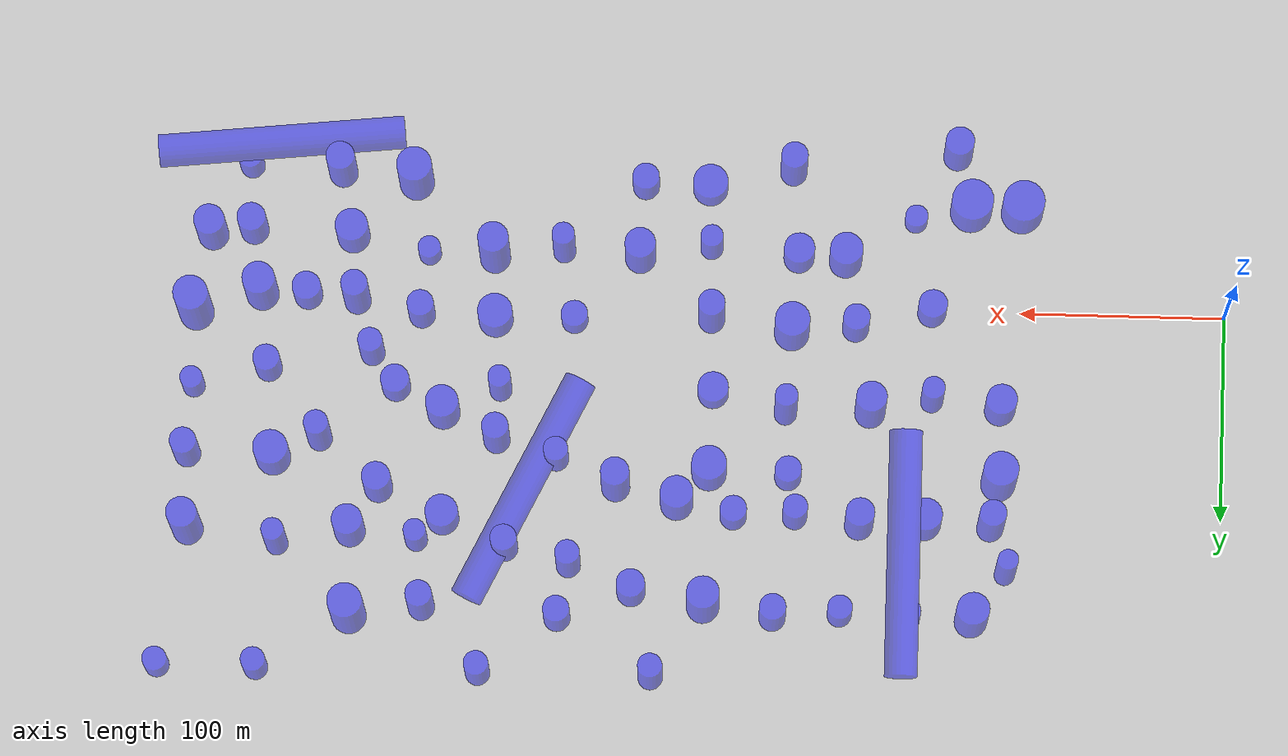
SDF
<sdf version="1.6">
 <world name="default">
  <model name="ground_plane">
   <static>1</static>
   <link name="link">
    <collision name="collision">
     <geometry><plane><normal>0 0 1</normal><size>1400.0 1400.0</size></plane></geometry>
     <surface><friction><ode><mu>100</mu><mu2>50</mu2></ode></friction></surface>
    </collision>
    <visual name="visual">
     <cast_shadows>0</cast_shadows>
     <geometry><plane><normal>0 0 1</normal><size>1400.0 1400.0</size></plane></geometry>
     <material>
      <script><uri>file://media/materials/scripts/gazebo.material</uri><name>Gazebo/Grey</name></script>
     </material>
    </visual>
   </link>
  </model>
  <model name="unit_cylinder_clone">
   <static>true</static>
   <pose>100.023 -50.0251 18.13715 0 0 0</pose>
   <link name="link">
    <inertial>
     <mass>1</mass>
     <inertia><ixx>0.145833</ixx><ixy>0</ixy><ixz>0</ixz><iyy>0.145833</iyy><iyz>0</iyz><izz>0.125</izz></inertia>
    </inertial>
    <collision name="collision">
     <geometry><cylinder><radius>10.1458</radius><length>36.2743</length></cylinder></geometry>
    </collision>
    <visual name="visual">
     <geometry><cylinder><radius>10.1458</radius><length>36.2743</length></cylinder></geometry>
     <material><ambient>0 0 1 1</ambient><diffuse>0 0 1 1</diffuse></material>
     <transparency>0.5</transparency>
    </visual>
   </link>
  </model>
  <model name="unit_cylinder_clone_0">
   <static>true</static>
   <pose>125.023 -50.0251 18.13715 0 0 0</pose>
   <link name="link">
    <inertial>
     <mass>1</mass>
     <inertia><ixx>0.145833</ixx><ixy>0</ixy><ixz>0</ixz><iyy>0.145833</iyy><iyz>0</iyz><izz>0.125</izz></inertia>
    </inertial>
    <collision name="collision">
     <geometry><cylinder><radius>10.1458</radius><length>36.2743</length></cylinder></geometry>
    </collision>
    <visual name="visual">
     <geometry><cylinder><radius>10.1458</radius><length>36.2743</length></cylinder></geometry>
     <material><ambient>0 0 1 1</ambient><diffuse>0 0 1 1</diffuse></material>
     <transparency>0.5</transparency>
    </visual>
   </link>
  </model>
  <model name="static_obs18">
   <static>true</static>
   <pose>143.06 0.77 15.0 0 0 0</pose>
   <link name="link">
    <gravity>false</gravity>
    <collision name="collision">
     <geometry><cylinder><radius>7.0</radius><length>30.0</length></cylinder></geometry>
    </collision>
    <visual name="visual">
     <geometry><cylinder><radius>7.0</radius><length>30.0</length></cylinder></geometry>
     <material><ambient>0 0 1 1</ambient><diffuse>0 0 1 1</diffuse></material>
     <transparency>0.5</transparency>
    </visual>
   </link>
  </model>
  <model name="static_obs19">
   <static>true</static>
   <pose>132.02 -77.37 22.0 0 0 0</pose>
   <link name="link">
    <gravity>false</gravity>
    <collision name="collision">
     <geometry><cylinder><radius>7.0</radius><length>44.0</length></cylinder></geometry>
    </collision>
    <visual name="visual">
     <geometry><cylinder><radius>7.0</radius><length>44.0</length></cylinder></geometry>
     <material><ambient>0 0 1 1</ambient><diffuse>0 0 1 1</diffuse></material>
     <transparency>0.5</transparency>
    </visual>
   </link>
  </model>
  <model name="static_obs20">
   <static>true</static>
   <pose>185.89 -23.61 20.0 0 0 0</pose>
   <link name="link">
    <gravity>false</gravity>
    <collision name="collision">
     <geometry><cylinder><radius>8.0</radius><length>40.0</length></cylinder></geometry>
    </collision>
    <visual name="visual">
     <geometry><cylinder><radius>8.0</radius><length>40.0</length></cylinder></geometry>
     <material><ambient>0 0 1 1</ambient><diffuse>0 0 1 1</diffuse></material>
     <transparency>0.5</transparency>
    </visual>
   </link>
  </model>
  <model name="static_obs21">
   <static>true</static>
   <pose>212.28 -67.25 25.0 0 0 0</pose>
   <link name="link">
    <gravity>false</gravity>
    <collision name="collision">
     <geometry><cylinder><radius>6.5</radius><length>50.0</length></cylinder></geometry>
    </collision>
    <visual name="visual">
     <geometry><cylinder><radius>6.5</radius><length>50.0</length></cylinder></geometry>
     <material><ambient>0 0 1 1</ambient><diffuse>0 0 1 1</diffuse></material>
     <transparency>0.5</transparency>
    </visual>
   </link>
  </model>
  <model name="static_obs49">
   <static>true</static>
   <pose>477.63 -63.67 15.0 0 0 0</pose>
   <link name="link">
    <gravity>false</gravity>
    <collision name="collision">
     <geometry><cylinder><radius>6.0</radius><length>30.0</length></cylinder></geometry>
    </collision>
    <visual name="visual">
     <geometry><cylinder><radius>6.0</radius><length>30.0</length></cylinder></geometry>
     <material><ambient>0 0 1 1</ambient><diffuse>0 0 1 1</diffuse></material>
     <transparency>0.5</transparency>
    </visual>
   </link>
  </model>
  <model name="static_obs50">
   <static>true</static>
   <pose>432.98 -61.18 25.0 0 0 0</pose>
   <link name="link">
    <gravity>false</gravity>
    <collision name="collision">
     <geometry><cylinder><radius>7.0</radius><length>50.0</length></cylinder></geometry>
    </collision>
    <visual name="visual">
     <geometry><cylinder><radius>7.0</radius><length>50.0</length></cylinder></geometry>
     <material><ambient>0 0 1 1</ambient><diffuse>0 0 1 1</diffuse></material>
     <transparency>0.5</transparency>
    </visual>
   </link>
  </model>
  <model name="static_obs51">
   <static>true</static>
   <pose>475.65 -31.66 20.0 0 0 0</pose>
   <link name="link">
    <gravity>false</gravity>
    <collision name="collision">
     <geometry><cylinder><radius>7.0</radius><length>40.0</length></cylinder></geometry>
    </collision>
    <visual name="visual">
     <geometry><cylinder><radius>7.0</radius><length>40.0</length></cylinder></geometry>
     <material><ambient>0 0 1 1</ambient><diffuse>0 0 1 1</diffuse></material>
     <transparency>0.5</transparency>
    </visual>
   </link>
  </model>
  <model name="static_obs52">
   <static>true</static>
   <pose>427.03 -29.68 18.0 0 0 0</pose>
   <link name="link">
    <gravity>false</gravity>
    <collision name="collision">
     <geometry><cylinder><radius>8.0</radius><length>36.0</length></cylinder></geometry>
    </collision>
    <visual name="visual">
     <geometry><cylinder><radius>8.0</radius><length>36.0</length></cylinder></geometry>
     <material><ambient>0 0 1 1</ambient><diffuse>0 0 1 1</diffuse></material>
     <transparency>0.5</transparency>
    </visual>
   </link>
  </model>
  <model name="static_obs53">
   <static>true</static>
   <pose>470.69 -0.03 25.0 0 0 0</pose>
   <link name="link">
    <gravity>false</gravity>
    <collision name="collision">
     <geometry><cylinder><radius>8.0</radius><length>50.0</length></cylinder></geometry>
    </collision>
    <visual name="visual">
     <geometry><cylinder><radius>8.0</radius><length>50.0</length></cylinder></geometry>
     <material><ambient>0 0 1 1</ambient><diffuse>0 0 1 1</diffuse></material>
     <transparency>0.5</transparency>
    </visual>
   </link>
  </model>
  <model name="static_obs54">
   <static>true</static>
   <pose>424.05 2.2 28.0 0 0 0</pose>
   <link name="link">
    <gravity>false</gravity>
    <collision name="collision">
     <geometry><cylinder><radius>6.5</radius><length>56.0</length></cylinder></geometry>
    </collision>
    <visual name="visual">
     <geometry><cylinder><radius>6.5</radius><length>56.0</length></cylinder></geometry>
     <material><ambient>0 0 1 1</ambient><diffuse>0 0 1 1</diffuse></material>
     <transparency>0.5</transparency>
    </visual>
   </link>
  </model>
  <model name="static_obs55">
   <static>true</static>
   <pose>466.36 36.68 18.0 0 0 0</pose>
   <link name="link">
    <gravity>false</gravity>
    <collision name="collision">
     <geometry><cylinder><radius>6.5</radius><length>36.0</length></cylinder></geometry>
    </collision>
    <visual name="visual">
     <geometry><cylinder><radius>6.5</radius><length>36.0</length></cylinder></geometry>
     <material><ambient>0 0 1 1</ambient><diffuse>0 0 1 1</diffuse></material>
     <transparency>0.5</transparency>
    </visual>
   </link>
  </model>
  <model name="static_obs56">
   <static>true</static>
   <pose>415.91 27.95 22.0 0 0 0</pose>
   <link name="link">
    <gravity>false</gravity>
    <collision name="collision">
     <geometry><cylinder><radius>6.0</radius><length>44.0</length></cylinder></geometry>
    </collision>
    <visual name="visual">
     <geometry><cylinder><radius>6.0</radius><length>44.0</length></cylinder></geometry>
     <material><ambient>0 0 1 1</ambient><diffuse>0 0 1 1</diffuse></material>
     <transparency>0.5</transparency>
    </visual>
   </link>
  </model>
  <model name="static_obs57">
   <static>true</static>
   <pose>440.3 70.84 28.0 0 0 0</pose>
   <link name="link">
    <gravity>false</gravity>
    <collision name="collision">
     <geometry><cylinder><radius>6.0</radius><length>56.0</length></cylinder></geometry>
    </collision>
    <visual name="visual">
     <geometry><cylinder><radius>6.0</radius><length>56.0</length></cylinder></geometry>
     <material><ambient>0 0 1 1</ambient><diffuse>0 0 1 1</diffuse></material>
     <transparency>0.5</transparency>
    </visual>
   </link>
  </model>
  <model name="static_obs58">
   <static>true</static>
   <pose>403.84 44.39 15.0 0 0 0</pose>
   <link name="link">
    <gravity>false</gravity>
    <collision name="collision">
     <geometry><cylinder><radius>7.0</radius><length>30.0</length></cylinder></geometry>
    </collision>
    <visual name="visual">
     <geometry><cylinder><radius>7.0</radius><length>30.0</length></cylinder></geometry>
     <material><ambient>0 0 1 1</ambient><diffuse>0 0 1 1</diffuse></material>
     <transparency>0.5</transparency>
    </visual>
   </link>
  </model>
  <model name="static_obs59">
   <static>true</static>
   <pose>410.97 94.51 22.0 0 0 0</pose>
   <link name="link">
    <gravity>false</gravity>
    <collision name="collision">
     <geometry><cylinder><radius>7.0</radius><length>44.0</length></cylinder></geometry>
    </collision>
    <visual name="visual">
     <geometry><cylinder><radius>7.0</radius><length>44.0</length></cylinder></geometry>
     <material><ambient>0 0 1 1</ambient><diffuse>0 0 1 1</diffuse></material>
     <transparency>0.5</transparency>
    </visual>
   </link>
  </model>
  <model name="static_obs60">
   <static>true</static>
   <pose>380.31 56.51 20.0 0 0 0</pose>
   <link name="link">
    <gravity>false</gravity>
    <collision name="collision">
     <geometry><cylinder><radius>8.0</radius><length>40.0</length></cylinder></geometry>
    </collision>
    <visual name="visual">
     <geometry><cylinder><radius>8.0</radius><length>40.0</length></cylinder></geometry>
     <material><ambient>0 0 1 1</ambient><diffuse>0 0 1 1</diffuse></material>
     <transparency>0.5</transparency>
    </visual>
   </link>
  </model>
  <model name="static_obs61">
   <static>true</static>
   <pose>379.25 108.63 15.0 0 0 0</pose>
   <link name="link">
    <gravity>false</gravity>
    <collision name="collision">
     <geometry><cylinder><radius>8.0</radius><length>30.0</length></cylinder></geometry>
    </collision>
    <visual name="visual">
     <geometry><cylinder><radius>8.0</radius><length>30.0</length></cylinder></geometry>
     <material><ambient>0 0 1 1</ambient><diffuse>0 0 1 1</diffuse></material>
     <transparency>0.5</transparency>
    </visual>
   </link>
  </model>
  <model name="static_obs62">
   <static>true</static>
   <pose>353.98 69.28 25.0 0 0 0</pose>
   <link name="link">
    <gravity>false</gravity>
    <collision name="collision">
     <geometry><cylinder><radius>6.5</radius><length>50.0</length></cylinder></geometry>
    </collision>
    <visual name="visual">
     <geometry><cylinder><radius>6.5</radius><length>50.0</length></cylinder></geometry>
     <material><ambient>0 0 1 1</ambient><diffuse>0 0 1 1</diffuse></material>
     <transparency>0.5</transparency>
    </visual>
   </link>
  </model>
  <model name="static_obs63">
   <static>true</static>
   <pose>348.59 122.33 20.0 0 0 0</pose>
   <link name="link">
    <gravity>false</gravity>
    <collision name="collision">
     <geometry><cylinder><radius>6.5</radius><length>40.0</length></cylinder></geometry>
    </collision>
    <visual name="visual">
     <geometry><cylinder><radius>6.5</radius><length>40.0</length></cylinder></geometry>
     <material><ambient>0 0 1 1</ambient><diffuse>0 0 1 1</diffuse></material>
     <transparency>0.5</transparency>
    </visual>
   </link>
  </model>
  <model name="static_obs64">
   <static>true</static>
   <pose>324.61 77.73 18.0 0 0 0</pose>
   <link name="link">
    <gravity>false</gravity>
    <collision name="collision">
     <geometry><cylinder><radius>6.0</radius><length>36.0</length></cylinder></geometry>
    </collision>
    <visual name="visual">
     <geometry><cylinder><radius>6.0</radius><length>36.0</length></cylinder></geometry>
     <material><ambient>0 0 1 1</ambient><diffuse>0 0 1 1</diffuse></material>
     <transparency>0.5</transparency>
    </visual>
   </link>
  </model>
  <model name="static_obs65">
   <static>true</static>
   <pose>317.36 129.99 25.0 0 0 0</pose>
   <link name="link">
    <gravity>false</gravity>
    <collision name="collision">
     <geometry><cylinder><radius>6.0</radius><length>50.0</length></cylinder></geometry>
    </collision>
    <visual name="visual">
     <geometry><cylinder><radius>6.0</radius><length>50.0</length></cylinder></geometry>
     <material><ambient>0 0 1 1</ambient><diffuse>0 0 1 1</diffuse></material>
     <transparency>0.5</transparency>
    </visual>
   </link>
  </model>
  <model name="static_obs66">
   <static>true</static>
   <pose>295.38 91.04 28.0 0 0 0</pose>
   <link name="link">
    <gravity>false</gravity>
    <collision name="collision">
     <geometry><cylinder><radius>7.0</radius><length>56.0</length></cylinder></geometry>
    </collision>
    <visual name="visual">
     <geometry><cylinder><radius>7.0</radius><length>56.0</length></cylinder></geometry>
     <material><ambient>0 0 1 1</ambient><diffuse>0 0 1 1</diffuse></material>
     <transparency>0.5</transparency>
    </visual>
   </link>
  </model>
  <model name="static_obs67">
   <static>true</static>
   <pose>286.52 142.45 18.0 0 0 0</pose>
   <link name="link">
    <gravity>false</gravity>
    <collision name="collision">
     <geometry><cylinder><radius>7.0</radius><length>36.0</length></cylinder></geometry>
    </collision>
    <visual name="visual">
     <geometry><cylinder><radius>7.0</radius><length>36.0</length></cylinder></geometry>
     <material><ambient>0 0 1 1</ambient><diffuse>0 0 1 1</diffuse></material>
     <transparency>0.5</transparency>
    </visual>
   </link>
  </model>
  <model name="static_obs68">
   <static>true</static>
   <pose>265.4 98.44 22.0 0 0 0</pose>
   <link name="link">
    <gravity>false</gravity>
    <collision name="collision">
     <geometry><cylinder><radius>8.0</radius><length>44.0</length></cylinder></geometry>
    </collision>
    <visual name="visual">
     <geometry><cylinder><radius>8.0</radius><length>44.0</length></cylinder></geometry>
     <material><ambient>0 0 1 1</ambient><diffuse>0 0 1 1</diffuse></material>
     <transparency>0.5</transparency>
    </visual>
   </link>
  </model>
  <model name="static_obs69">
   <static>true</static>
   <pose>251.36 148.69 28.0 0 0 0</pose>
   <link name="link">
    <gravity>false</gravity>
    <collision name="collision">
     <geometry><cylinder><radius>8.0</radius><length>56.0</length></cylinder></geometry>
    </collision>
    <visual name="visual">
     <geometry><cylinder><radius>8.0</radius><length>56.0</length></cylinder></geometry>
     <material><ambient>0 0 1 1</ambient><diffuse>0 0 1 1</diffuse></material>
     <transparency>0.5</transparency>
    </visual>
   </link>
  </model>
  <model name="static_obs70">
   <static>true</static>
   <pose>237.72 103.9 15.0 0 0 0</pose>
   <link name="link">
    <gravity>false</gravity>
    <collision name="collision">
     <geometry><cylinder><radius>6.5</radius><length>30.0</length></cylinder></geometry>
    </collision>
    <visual name="visual">
     <geometry><cylinder><radius>6.5</radius><length>30.0</length></cylinder></geometry>
     <material><ambient>0 0 1 1</ambient><diffuse>0 0 1 1</diffuse></material>
     <transparency>0.5</transparency>
    </visual>
   </link>
  </model>
  <model name="static_obs71">
   <static>true</static>
   <pose>217.5 153.25 22.0 0 0 0</pose>
   <link name="link">
    <gravity>false</gravity>
    <collision name="collision">
     <geometry><cylinder><radius>6.5</radius><length>44.0</length></cylinder></geometry>
    </collision>
    <visual name="visual">
     <geometry><cylinder><radius>6.5</radius><length>44.0</length></cylinder></geometry>
     <material><ambient>0 0 1 1</ambient><diffuse>0 0 1 1</diffuse></material>
     <transparency>0.5</transparency>
    </visual>
   </link>
  </model>
  <model name="static_obs72">
   <static>true</static>
   <pose>207.74 103.49 20.0 0 0 0</pose>
   <link name="link">
    <gravity>false</gravity>
    <collision name="collision">
     <geometry><cylinder><radius>6.0</radius><length>40.0</length></cylinder></geometry>
    </collision>
    <visual name="visual">
     <geometry><cylinder><radius>6.0</radius><length>40.0</length></cylinder></geometry>
     <material><ambient>0 0 1 1</ambient><diffuse>0 0 1 1</diffuse></material>
     <transparency>0.5</transparency>
    </visual>
   </link>
  </model>
  <model name="static_obs73">
   <static>true</static>
   <pose>184.84 150.73 15.0 0 0 0</pose>
   <link name="link">
    <gravity>false</gravity>
    <collision name="collision">
     <geometry><cylinder><radius>6.0</radius><length>30.0</length></cylinder></geometry>
    </collision>
    <visual name="visual">
     <geometry><cylinder><radius>6.0</radius><length>30.0</length></cylinder></geometry>
     <material><ambient>0 0 1 1</ambient><diffuse>0 0 1 1</diffuse></material>
     <transparency>0.5</transparency>
    </visual>
   </link>
  </model>
  <model name="static_obs74">
   <static>true</static>
   <pose>176.4 106.82 25.0 0 0 0</pose>
   <link name="link">
    <gravity>false</gravity>
    <collision name="collision">
     <geometry><cylinder><radius>7.0</radius><length>50.0</length></cylinder></geometry>
    </collision>
    <visual name="visual">
     <geometry><cylinder><radius>7.0</radius><length>50.0</length></cylinder></geometry>
     <material><ambient>0 0 1 1</ambient><diffuse>0 0 1 1</diffuse></material>
     <transparency>0.5</transparency>
    </visual>
   </link>
  </model>
  <model name="static_obs75">
   <static>true</static>
   <pose>152.87 153.06 20.0 0 0 0</pose>
   <link name="link">
    <gravity>false</gravity>
    <collision name="collision">
     <geometry><cylinder><radius>7.0</radius><length>40.0</length></cylinder></geometry>
    </collision>
    <visual name="visual">
     <geometry><cylinder><radius>7.0</radius><length>40.0</length></cylinder></geometry>
     <material><ambient>0 0 1 1</ambient><diffuse>0 0 1 1</diffuse></material>
     <transparency>0.5</transparency>
    </visual>
   </link>
  </model>
  <model name="static_obs76">
   <static>true</static>
   <pose>144.38 105.14 18.0 0 0 0</pose>
   <link name="link">
    <gravity>false</gravity>
    <collision name="collision">
     <geometry><cylinder><radius>8.0</radius><length>36.0</length></cylinder></geometry>
    </collision>
    <visual name="visual">
     <geometry><cylinder><radius>8.0</radius><length>36.0</length></cylinder></geometry>
     <material><ambient>0 0 1 1</ambient><diffuse>0 0 1 1</diffuse></material>
     <transparency>0.5</transparency>
    </visual>
   </link>
  </model>
  <model name="static_obs77">
   <static>true</static>
   <pose>120.86 152.39 25.0 0 0 0</pose>
   <link name="link">
    <gravity>false</gravity>
    <collision name="collision">
     <geometry><cylinder><radius>8.0</radius><length>50.0</length></cylinder></geometry>
    </collision>
    <visual name="visual">
     <geometry><cylinder><radius>8.0</radius><length>50.0</length></cylinder></geometry>
     <material><ambient>0 0 1 1</ambient><diffuse>0 0 1 1</diffuse></material>
     <transparency>0.5</transparency>
    </visual>
   </link>
  </model>
  <model name="static_obs78">
   <static>true</static>
   <pose>112.39 106.47 28.0 0 0 0</pose>
   <link name="link">
    <gravity>false</gravity>
    <collision name="collision">
     <geometry><cylinder><radius>6.5</radius><length>56.0</length></cylinder></geometry>
    </collision>
    <visual name="visual">
     <geometry><cylinder><radius>6.5</radius><length>56.0</length></cylinder></geometry>
     <material><ambient>0 0 1 1</ambient><diffuse>0 0 1 1</diffuse></material>
     <transparency>0.5</transparency>
    </visual>
   </link>
  </model>
  <model name="static_obs172">
   <static>true</static>
   <pose>252.84 -58.23 11.0 0 0 0</pose>
   <link name="link">
    <gravity>false</gravity>
    <collision name="collision">
     <geometry><cylinder><radius>8.5</radius><length>22.0</length></cylinder></geometry>
    </collision>
    <visual name="visual">
     <geometry><cylinder><radius>8.5</radius><length>22.0</length></cylinder></geometry>
     <material><ambient>0 0 1 1</ambient><diffuse>0 0 1 1</diffuse></material>
     <transparency>0.5</transparency>
    </visual>
   </link>
  </model>
  <model name="static_obs173">
   <static>true</static>
   <pose>284.43 -58.48 15.0 0 0 0</pose>
   <link name="link">
    <gravity>false</gravity>
    <collision name="collision">
     <geometry><cylinder><radius>6.5</radius><length>30.0</length></cylinder></geometry>
    </collision>
    <visual name="visual">
     <geometry><cylinder><radius>6.5</radius><length>30.0</length></cylinder></geometry>
     <material><ambient>0 0 1 1</ambient><diffuse>0 0 1 1</diffuse></material>
     <transparency>0.5</transparency>
    </visual>
   </link>
  </model>
  <model name="static_obs174">
   <static>true</static>
   <pose>396.86 -57.23 27.0 0 0 0</pose>
   <link name="link">
    <gravity>false</gravity>
    <collision name="collision">
     <geometry><cylinder><radius>8.5</radius><length>54.0</length></cylinder></geometry>
    </collision>
    <visual name="visual">
     <geometry><cylinder><radius>8.5</radius><length>54.0</length></cylinder></geometry>
     <material><ambient>0 0 1 1</ambient><diffuse>0 0 1 1</diffuse></material>
     <transparency>0.5</transparency>
    </visual>
   </link>
  </model>
  <model name="static_obs176">
   <static>true</static>
   <pose>208.73 -24.97 15.0 0 0 0</pose>
   <link name="link">
    <gravity>false</gravity>
    <collision name="collision">
     <geometry><cylinder><radius>7.5</radius><length>30.0</length></cylinder></geometry>
    </collision>
    <visual name="visual">
     <geometry><cylinder><radius>7.5</radius><length>30.0</length></cylinder></geometry>
     <material><ambient>0 0 1 1</ambient><diffuse>0 0 1 1</diffuse></material>
     <transparency>0.5</transparency>
    </visual>
   </link>
  </model>
  <model name="static_obs177">
   <static>true</static>
   <pose>251.49 -28.52 19.0 0 0 0</pose>
   <link name="link">
    <gravity>false</gravity>
    <collision name="collision">
     <geometry><cylinder><radius>5.5</radius><length>38.0</length></cylinder></geometry>
    </collision>
    <visual name="visual">
     <geometry><cylinder><radius>5.5</radius><length>38.0</length></cylinder></geometry>
     <material><ambient>0 0 1 1</ambient><diffuse>0 0 1 1</diffuse></material>
     <transparency>0.5</transparency>
    </visual>
   </link>
  </model>
  <model name="static_obs178">
   <static>true</static>
   <pose>286.25 -22.76 23.0 0 0 0</pose>
   <link name="link">
    <gravity>false</gravity>
    <collision name="collision">
     <geometry><cylinder><radius>7.5</radius><length>46.0</length></cylinder></geometry>
    </collision>
    <visual name="visual">
     <geometry><cylinder><radius>7.5</radius><length>46.0</length></cylinder></geometry>
     <material><ambient>0 0 1 1</ambient><diffuse>0 0 1 1</diffuse></material>
     <transparency>0.5</transparency>
    </visual>
   </link>
  </model>
  <model name="static_obs179">
   <static>true</static>
   <pose>323.55 -24.99 27.0 0 0 0</pose>
   <link name="link">
    <gravity>false</gravity>
    <collision name="collision">
     <geometry><cylinder><radius>5.5</radius><length>54.0</length></cylinder></geometry>
    </collision>
    <visual name="visual">
     <geometry><cylinder><radius>5.5</radius><length>54.0</length></cylinder></geometry>
     <material><ambient>0 0 1 1</ambient><diffuse>0 0 1 1</diffuse></material>
     <transparency>0.5</transparency>
    </visual>
   </link>
  </model>
  <model name="static_obs180">
   <static>true</static>
   <pose>357.35 -20.96 31.0 0 0 0</pose>
   <link name="link">
    <gravity>false</gravity>
    <collision name="collision">
     <geometry><cylinder><radius>7.5</radius><length>62.0</length></cylinder></geometry>
    </collision>
    <visual name="visual">
     <geometry><cylinder><radius>7.5</radius><length>62.0</length></cylinder></geometry>
     <material><ambient>0 0 1 1</ambient><diffuse>0 0 1 1</diffuse></material>
     <transparency>0.5</transparency>
    </visual>
   </link>
  </model>
  <model name="static_obs181">
   <static>true</static>
   <pose>389.29 -22.17 11.0 0 0 0</pose>
   <link name="link">
    <gravity>false</gravity>
    <collision name="collision">
     <geometry><cylinder><radius>5.5</radius><length>22.0</length></cylinder></geometry>
    </collision>
    <visual name="visual">
     <geometry><cylinder><radius>5.5</radius><length>22.0</length></cylinder></geometry>
     <material><ambient>0 0 1 1</ambient><diffuse>0 0 1 1</diffuse></material>
     <transparency>0.5</transparency>
    </visual>
   </link>
  </model>
  <model name="static_obs182">
   <static>true</static>
   <pose>495.79 -28.79 23.0 0 0 0</pose>
   <link name="link">
    <gravity>false</gravity>
    <collision name="collision">
     <geometry><cylinder><radius>7.5</radius><length>46.0</length></cylinder></geometry>
    </collision>
    <visual name="visual">
     <geometry><cylinder><radius>7.5</radius><length>46.0</length></cylinder></geometry>
     <material><ambient>0 0 1 1</ambient><diffuse>0 0 1 1</diffuse></material>
     <transparency>0.5</transparency>
    </visual>
   </link>
  </model>
  <model name="static_obs183">
   <static>true</static>
   <pose>180.18 9.55 19.0 0 0 0</pose>
   <link name="link">
    <gravity>false</gravity>
    <collision name="collision">
     <geometry><cylinder><radius>6.5</radius><length>38.0</length></cylinder></geometry>
    </collision>
    <visual name="visual">
     <geometry><cylinder><radius>6.5</radius><length>38.0</length></cylinder></geometry>
     <material><ambient>0 0 1 1</ambient><diffuse>0 0 1 1</diffuse></material>
     <transparency>0.5</transparency>
    </visual>
   </link>
  </model>
  <model name="static_obs184">
   <static>true</static>
   <pose>211.36 12.69 23.0 0 0 0</pose>
   <link name="link">
    <gravity>false</gravity>
    <collision name="collision">
     <geometry><cylinder><radius>8.5</radius><length>46.0</length></cylinder></geometry>
    </collision>
    <visual name="visual">
     <geometry><cylinder><radius>8.5</radius><length>46.0</length></cylinder></geometry>
     <material><ambient>0 0 1 1</ambient><diffuse>0 0 1 1</diffuse></material>
     <transparency>0.5</transparency>
    </visual>
   </link>
  </model>
  <model name="static_obs185">
   <static>true</static>
   <pose>250.74 7.0 27.0 0 0 0</pose>
   <link name="link">
    <gravity>false</gravity>
    <collision name="collision">
     <geometry><cylinder><radius>6.5</radius><length>54.0</length></cylinder></geometry>
    </collision>
    <visual name="visual">
     <geometry><cylinder><radius>6.5</radius><length>54.0</length></cylinder></geometry>
     <material><ambient>0 0 1 1</ambient><diffuse>0 0 1 1</diffuse></material>
     <transparency>0.5</transparency>
    </visual>
   </link>
  </model>
  <model name="static_obs186">
   <static>true</static>
   <pose>317.6 8.89 11.0 0 0 0</pose>
   <link name="link">
    <gravity>false</gravity>
    <collision name="collision">
     <geometry><cylinder><radius>6.5</radius><length>22.0</length></cylinder></geometry>
    </collision>
    <visual name="visual">
     <geometry><cylinder><radius>6.5</radius><length>22.0</length></cylinder></geometry>
     <material><ambient>0 0 1 1</ambient><diffuse>0 0 1 1</diffuse></material>
     <transparency>0.5</transparency>
    </visual>
   </link>
  </model>
  <model name="static_obs187">
   <static>true</static>
   <pose>356.19 9.81 15.0 0 0 0</pose>
   <link name="link">
    <gravity>false</gravity>
    <collision name="collision">
     <geometry><cylinder><radius>8.5</radius><length>30.0</length></cylinder></geometry>
    </collision>
    <visual name="visual">
     <geometry><cylinder><radius>8.5</radius><length>30.0</length></cylinder></geometry>
     <material><ambient>0 0 1 1</ambient><diffuse>0 0 1 1</diffuse></material>
     <transparency>0.5</transparency>
    </visual>
   </link>
  </model>
  <model name="static_obs188">
   <static>true</static>
   <pose>392.33 8.25 19.0 0 0 0</pose>
   <link name="link">
    <gravity>false</gravity>
    <collision name="collision">
     <geometry><cylinder><radius>6.5</radius><length>38.0</length></cylinder></geometry>
    </collision>
    <visual name="visual">
     <geometry><cylinder><radius>6.5</radius><length>38.0</length></cylinder></geometry>
     <material><ambient>0 0 1 1</ambient><diffuse>0 0 1 1</diffuse></material>
     <transparency>0.5</transparency>
    </visual>
   </link>
  </model>
  <model name="static_obs189">
   <static>true</static>
   <pose>502.65 10.16 31.0 0 0 0</pose>
   <link name="link">
    <gravity>false</gravity>
    <collision name="collision">
     <geometry><cylinder><radius>8.5</radius><length>62.0</length></cylinder></geometry>
    </collision>
    <visual name="visual">
     <geometry><cylinder><radius>8.5</radius><length>62.0</length></cylinder></geometry>
     <material><ambient>0 0 1 1</ambient><diffuse>0 0 1 1</diffuse></material>
     <transparency>0.5</transparency>
    </visual>
   </link>
  </model>
  <model name="static_obs191">
   <static>true</static>
   <pose>108.87 48.18 19.0 0 0 0</pose>
   <link name="link">
    <gravity>false</gravity>
    <collision name="collision">
     <geometry><cylinder><radius>7.5</radius><length>38.0</length></cylinder></geometry>
    </collision>
    <visual name="visual">
     <geometry><cylinder><radius>7.5</radius><length>38.0</length></cylinder></geometry>
     <material><ambient>0 0 1 1</ambient><diffuse>0 0 1 1</diffuse></material>
     <transparency>0.5</transparency>
    </visual>
   </link>
  </model>
  <model name="static_obs192">
   <static>true</static>
   <pose>142.2 44.56 23.0 0 0 0</pose>
   <link name="link">
    <gravity>false</gravity>
    <collision name="collision">
     <geometry><cylinder><radius>5.5</radius><length>46.0</length></cylinder></geometry>
    </collision>
    <visual name="visual">
     <geometry><cylinder><radius>5.5</radius><length>46.0</length></cylinder></geometry>
     <material><ambient>0 0 1 1</ambient><diffuse>0 0 1 1</diffuse></material>
     <transparency>0.5</transparency>
    </visual>
   </link>
  </model>
  <model name="static_obs193">
   <static>true</static>
   <pose>172.25 50.97 27.0 0 0 0</pose>
   <link name="link">
    <gravity>false</gravity>
    <collision name="collision">
     <geometry><cylinder><radius>7.5</radius><length>54.0</length></cylinder></geometry>
    </collision>
    <visual name="visual">
     <geometry><cylinder><radius>7.5</radius><length>54.0</length></cylinder></geometry>
     <material><ambient>0 0 1 1</ambient><diffuse>0 0 1 1</diffuse></material>
     <transparency>0.5</transparency>
    </visual>
   </link>
  </model>
  <model name="static_obs194">
   <static>true</static>
   <pose>213.46 52.5 31.0 0 0 0</pose>
   <link name="link">
    <gravity>false</gravity>
    <collision name="collision">
     <geometry><cylinder><radius>5.5</radius><length>62.0</length></cylinder></geometry>
    </collision>
    <visual name="visual">
     <geometry><cylinder><radius>5.5</radius><length>62.0</length></cylinder></geometry>
     <material><ambient>0 0 1 1</ambient><diffuse>0 0 1 1</diffuse></material>
     <transparency>0.5</transparency>
    </visual>
   </link>
  </model>
  <model name="static_obs195">
   <static>true</static>
   <pose>249.04 43.3 11.0 0 0 0</pose>
   <link name="link">
    <gravity>false</gravity>
    <collision name="collision">
     <geometry><cylinder><radius>7.5</radius><length>22.0</length></cylinder></geometry>
    </collision>
    <visual name="visual">
     <geometry><cylinder><radius>7.5</radius><length>22.0</length></cylinder></geometry>
     <material><ambient>0 0 1 1</ambient><diffuse>0 0 1 1</diffuse></material>
     <transparency>0.5</transparency>
    </visual>
   </link>
  </model>
  <model name="static_obs196">
   <static>true</static>
   <pose>352.74 44.42 23.0 0 0 0</pose>
   <link name="link">
    <gravity>false</gravity>
    <collision name="collision">
     <geometry><cylinder><radius>5.5</radius><length>46.0</length></cylinder></geometry>
    </collision>
    <visual name="visual">
     <geometry><cylinder><radius>5.5</radius><length>46.0</length></cylinder></geometry>
     <material><ambient>0 0 1 1</ambient><diffuse>0 0 1 1</diffuse></material>
     <transparency>0.5</transparency>
    </visual>
   </link>
  </model>
  <model name="static_obs197">
   <static>true</static>
   <pose>502.74 46.34 15.0 0 0 0</pose>
   <link name="link">
    <gravity>false</gravity>
    <collision name="collision">
     <geometry><cylinder><radius>5.5</radius><length>30.0</length></cylinder></geometry>
    </collision>
    <visual name="visual">
     <geometry><cylinder><radius>5.5</radius><length>30.0</length></cylinder></geometry>
     <material><ambient>0 0 1 1</ambient><diffuse>0 0 1 1</diffuse></material>
     <transparency>0.5</transparency>
    </visual>
   </link>
  </model>
  <model name="static_obs200">
   <static>true</static>
   <pose>108.92 84.5 27.0 0 0 0</pose>
   <link name="link">
    <gravity>false</gravity>
    <collision name="collision">
     <geometry><cylinder><radius>8.5</radius><length>54.0</length></cylinder></geometry>
    </collision>
    <visual name="visual">
     <geometry><cylinder><radius>8.5</radius><length>54.0</length></cylinder></geometry>
     <material><ambient>0 0 1 1</ambient><diffuse>0 0 1 1</diffuse></material>
     <transparency>0.5</transparency>
    </visual>
   </link>
  </model>
  <model name="static_obs201">
   <static>true</static>
   <pose>211.52 83.88 15.0 0 0 0</pose>
   <link name="link">
    <gravity>false</gravity>
    <collision name="collision">
     <geometry><cylinder><radius>6.5</radius><length>30.0</length></cylinder></geometry>
    </collision>
    <visual name="visual">
     <geometry><cylinder><radius>6.5</radius><length>30.0</length></cylinder></geometry>
     <material><ambient>0 0 1 1</ambient><diffuse>0 0 1 1</diffuse></material>
     <transparency>0.5</transparency>
    </visual>
   </link>
  </model>
  <model name="static_obs202">
   <static>true</static>
   <pose>250.03 82.99 19.0 0 0 0</pose>
   <link name="link">
    <gravity>false</gravity>
    <collision name="collision">
     <geometry><cylinder><radius>8.5</radius><length>38.0</length></cylinder></geometry>
    </collision>
    <visual name="visual">
     <geometry><cylinder><radius>8.5</radius><length>38.0</length></cylinder></geometry>
     <material><ambient>0 0 1 1</ambient><diffuse>0 0 1 1</diffuse></material>
     <transparency>0.5</transparency>
    </visual>
   </link>
  </model>
  <model name="static_obs203">
   <static>true</static>
   <pose>462.79 80.84 19.0 0 0 0</pose>
   <link name="link">
    <gravity>false</gravity>
    <collision name="collision">
     <geometry><cylinder><radius>8.5</radius><length>38.0</length></cylinder></geometry>
    </collision>
    <visual name="visual">
     <geometry><cylinder><radius>8.5</radius><length>38.0</length></cylinder></geometry>
     <material><ambient>0 0 1 1</ambient><diffuse>0 0 1 1</diffuse></material>
     <transparency>0.5</transparency>
    </visual>
   </link>
  </model>
  <model name="static_obs204">
   <static>true</static>
   <pose>504.77 79.94 23.0 0 0 0</pose>
   <link name="link">
    <gravity>false</gravity>
    <collision name="collision">
     <geometry><cylinder><radius>6.5</radius><length>46.0</length></cylinder></geometry>
    </collision>
    <visual name="visual">
     <geometry><cylinder><radius>6.5</radius><length>46.0</length></cylinder></geometry>
     <material><ambient>0 0 1 1</ambient><diffuse>0 0 1 1</diffuse></material>
     <transparency>0.5</transparency>
    </visual>
   </link>
  </model>
  <model name="static_obs208">
   <static>true</static>
   <pose>391.75 119.55 19.0 0 0 0</pose>
   <link name="link">
    <gravity>false</gravity>
    <collision name="collision">
     <geometry><cylinder><radius>5.5</radius><length>38.0</length></cylinder></geometry>
    </collision>
    <visual name="visual">
     <geometry><cylinder><radius>5.5</radius><length>38.0</length></cylinder></geometry>
     <material><ambient>0 0 1 1</ambient><diffuse>0 0 1 1</diffuse></material>
     <transparency>0.5</transparency>
    </visual>
   </link>
  </model>
  <model name="static_obs209">
   <static>true</static>
   <pose>424.24 116.27 23.0 0 0 0</pose>
   <link name="link">
    <gravity>false</gravity>
    <collision name="collision">
     <geometry><cylinder><radius>7.5</radius><length>46.0</length></cylinder></geometry>
    </collision>
    <visual name="visual">
     <geometry><cylinder><radius>7.5</radius><length>46.0</length></cylinder></geometry>
     <material><ambient>0 0 1 1</ambient><diffuse>0 0 1 1</diffuse></material>
     <transparency>0.5</transparency>
    </visual>
   </link>
  </model>
  <model name="static_obs210">
   <static>true</static>
   <pose>459.69 123.12 27.0 0 0 0</pose>
   <link name="link">
    <gravity>false</gravity>
    <collision name="collision">
     <geometry><cylinder><radius>5.5</radius><length>54.0</length></cylinder></geometry>
    </collision>
    <visual name="visual">
     <geometry><cylinder><radius>5.5</radius><length>54.0</length></cylinder></geometry>
     <material><ambient>0 0 1 1</ambient><diffuse>0 0 1 1</diffuse></material>
     <transparency>0.5</transparency>
    </visual>
   </link>
  </model>
  <model name="static_obs211">
   <static>true</static>
   <pose>503.29 117.23 31.0 0 0 0</pose>
   <link name="link">
    <gravity>false</gravity>
    <collision name="collision">
     <geometry><cylinder><radius>7.5</radius><length>62.0</length></cylinder></geometry>
    </collision>
    <visual name="visual">
     <geometry><cylinder><radius>7.5</radius><length>62.0</length></cylinder></geometry>
     <material><ambient>0 0 1 1</ambient><diffuse>0 0 1 1</diffuse></material>
     <transparency>0.5</transparency>
    </visual>
   </link>
  </model>
  <model name="static_obs217">
   <static>true</static>
   <pose>322.18 156.09 19.0 0 0 0</pose>
   <link name="link">
    <gravity>false</gravity>
    <collision name="collision">
     <geometry><cylinder><radius>6.5</radius><length>38.0</length></cylinder></geometry>
    </collision>
    <visual name="visual">
     <geometry><cylinder><radius>6.5</radius><length>38.0</length></cylinder></geometry>
     <material><ambient>0 0 1 1</ambient><diffuse>0 0 1 1</diffuse></material>
     <transparency>0.5</transparency>
    </visual>
   </link>
  </model>
  <model name="static_obs218">
   <static>true</static>
   <pose>388.35 152.47 27.0 0 0 0</pose>
   <link name="link">
    <gravity>false</gravity>
    <collision name="collision">
     <geometry><cylinder><radius>6.5</radius><length>54.0</length></cylinder></geometry>
    </collision>
    <visual name="visual">
     <geometry><cylinder><radius>6.5</radius><length>54.0</length></cylinder></geometry>
     <material><ambient>0 0 1 1</ambient><diffuse>0 0 1 1</diffuse></material>
     <transparency>0.5</transparency>
    </visual>
   </link>
  </model>
  <model name="static_obs219">
   <static>true</static>
   <pose>423.43 157.86 31.0 0 0 0</pose>
   <link name="link">
    <gravity>false</gravity>
    <collision name="collision">
     <geometry><cylinder><radius>8.5</radius><length>62.0</length></cylinder></geometry>
    </collision>
    <visual name="visual">
     <geometry><cylinder><radius>8.5</radius><length>62.0</length></cylinder></geometry>
     <material><ambient>0 0 1 1</ambient><diffuse>0 0 1 1</diffuse></material>
     <transparency>0.5</transparency>
    </visual>
   </link>
  </model>
  <model name="static_obs220">
   <static>true</static>
   <pose>516.0 184.0 13.0 0 0 0</pose>
   <link name="link">
    <gravity>false</gravity>
    <collision name="collision">
     <geometry><cylinder><radius>6.0</radius><length>26.0</length></cylinder></geometry>
    </collision>
    <visual name="visual">
     <geometry><cylinder><radius>6.0</radius><length>26.0</length></cylinder></geometry>
     <material><ambient>0 0 1 1</ambient><diffuse>0 0 1 1</diffuse></material>
     <transparency>0.5</transparency>
    </visual>
   </link>
  </model>
  <model name="static_obs221">
   <static>true</static>
   <pose>468.0 184.0 17.0 0 0 0</pose>
   <link name="link">
    <gravity>false</gravity>
    <collision name="collision">
     <geometry><cylinder><radius>6.0</radius><length>34.0</length></cylinder></geometry>
    </collision>
    <visual name="visual">
     <geometry><cylinder><radius>6.0</radius><length>34.0</length></cylinder></geometry>
     <material><ambient>0 0 1 1</ambient><diffuse>0 0 1 1</diffuse></material>
     <transparency>0.5</transparency>
    </visual>
   </link>
  </model>
  <model name="static_obs222">
   <static>true</static>
   <pose>360.0 184.0 21.0 0 0 0</pose>
   <link name="link">
    <gravity>false</gravity>
    <collision name="collision">
     <geometry><cylinder><radius>6.0</radius><length>42.0</length></cylinder></geometry>
    </collision>
    <visual name="visual">
     <geometry><cylinder><radius>6.0</radius><length>42.0</length></cylinder></geometry>
     <material><ambient>0 0 1 1</ambient><diffuse>0 0 1 1</diffuse></material>
     <transparency>0.5</transparency>
    </visual>
   </link>
  </model>
  <model name="static_obs223">
   <static>true</static>
   <pose>276.0 184.0 25.0 0 0 0</pose>
   <link name="link">
    <gravity>false</gravity>
    <collision name="collision">
     <geometry><cylinder><radius>6.0</radius><length>50.0</length></cylinder></geometry>
    </collision>
    <visual name="visual">
     <geometry><cylinder><radius>6.0</radius><length>50.0</length></cylinder></geometry>
     <material><ambient>0 0 1 1</ambient><diffuse>0 0 1 1</diffuse></material>
     <transparency>0.5</transparency>
    </visual>
   </link>
  </model>
  <model name="static_obs226">
   <static>true</static>
   <pose>151.78 -44.34 9.25 0 0 0</pose>
   <link name="link">
    <gravity>false</gravity>
    <collision name="collision">
     <geometry><cylinder><radius>5.5</radius><length>18.5</length></cylinder></geometry>
    </collision>
    <visual name="visual">
     <geometry><cylinder><radius>5.5</radius><length>18.5</length></cylinder></geometry>
     <material><ambient>0 0 1 1</ambient><diffuse>0 0 1 1</diffuse></material>
     <transparency>0.5</transparency>
    </visual>
   </link>
  </model>
  <model name="static_obs230">
   <static>true</static>
   <pose>448.24 -0.07 15.25 0 0 0</pose>
   <link name="link">
    <gravity>false</gravity>
    <collision name="collision">
     <geometry><cylinder><radius>7.0</radius><length>30.5</length></cylinder></geometry>
    </collision>
    <visual name="visual">
     <geometry><cylinder><radius>7.0</radius><length>30.5</length></cylinder></geometry>
     <material><ambient>0 0 1 1</ambient><diffuse>0 0 1 1</diffuse></material>
     <transparency>0.5</transparency>
    </visual>
   </link>
  </model>
  <model name="static_obs231">
   <static>true</static>
   <pose>104.88 129.19 29.0 0 0 0</pose>
   <link name="link">
    <gravity>false</gravity>
    <collision name="collision">
     <geometry><cylinder><radius>5.0</radius><length>58.0</length></cylinder></geometry>
    </collision>
    <visual name="visual">
     <geometry><cylinder><radius>5.0</radius><length>58.0</length></cylinder></geometry>
     <material><ambient>0 0 1 1</ambient><diffuse>0 0 1 1</diffuse></material>
     <transparency>0.5</transparency>
    </visual>
   </link>
  </model>
  <model name="horizontal_obs5">
   <static>true</static>
   <pose>462.0 -70.0 34.0 0 1.5707963267948966 0.10471975511965978</pose>
   <link name="link">
    <gravity>false</gravity>
    <collision name="collision">
     <geometry><cylinder><radius>8.0</radius><length>120.0</length></cylinder></geometry>
    </collision>
    <visual name="visual">
     <geometry><cylinder><radius>8.0</radius><length>120.0</length></cylinder></geometry>
     <material><ambient>0 0 1 1</ambient><diffuse>0 0 1 1</diffuse></material>
     <transparency>0.5</transparency>
    </visual>
   </link>
  </model>
  <model name="horizontal_obs6">
   <static>true</static>
   <pose>340.0 95.0 16.0 0 1.5707963267948966 1.117010721276371</pose>
   <link name="link">
    <gravity>false</gravity>
    <collision name="collision">
     <geometry><cylinder><radius>8.0</radius><length>120.0</length></cylinder></geometry>
    </collision>
    <visual name="visual">
     <geometry><cylinder><radius>8.0</radius><length>120.0</length></cylinder></geometry>
     <material><ambient>0 0 1 1</ambient><diffuse>0 0 1 1</diffuse></material>
     <transparency>0.5</transparency>
    </visual>
   </link>
  </model>
  <model name="horizontal_obs7">
   <static>true</static>
   <pose>155.0 125.0 38.0 0 1.5707963267948966 1.5707963267948966</pose>
   <link name="link">
    <gravity>false</gravity>
    <collision name="collision">
     <geometry><cylinder><radius>8.0</radius><length>120.0</length></cylinder></geometry>
    </collision>
    <visual name="visual">
     <geometry><cylinder><radius>8.0</radius><length>120.0</length></cylinder></geometry>
     <material><ambient>0 0 1 1</ambient><diffuse>0 0 1 1</diffuse></material>
     <transparency>0.5</transparency>
    </visual>
   </link>
  </model>
 </world>
</sdf>
